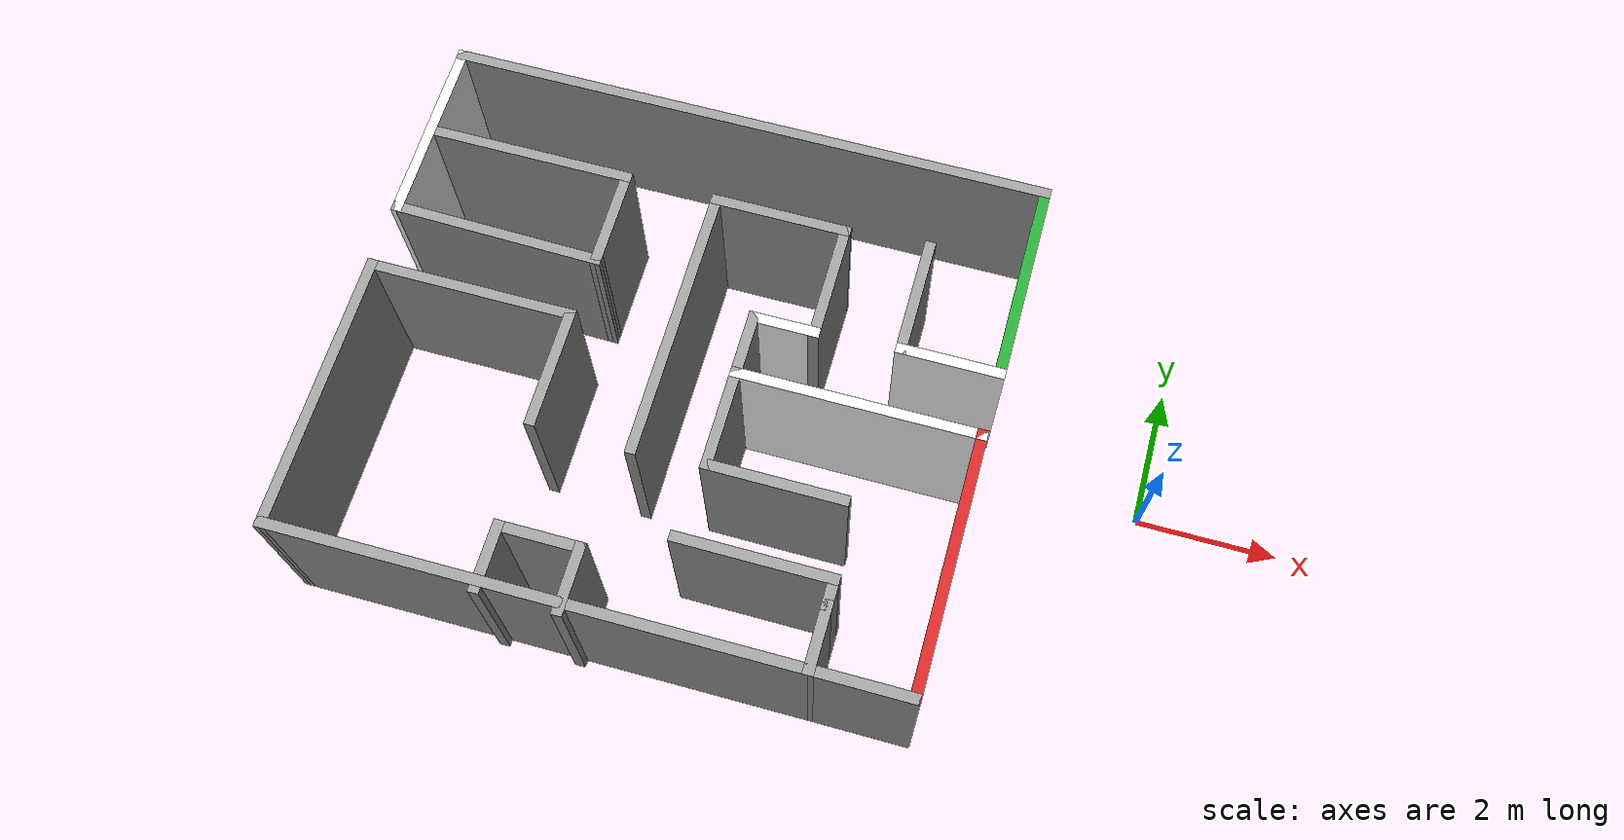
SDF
<?xml version='1.0'?>
<sdf version='1.6'>
  <model name='maze_prova'>
    <pose frame=''>-6.71327 -0.287831 0 0 -0 0</pose>
    <link name='Wall_0'>
      <collision name='Wall_0_Collision'>
        <geometry>
          <box>
            <size>3.75 0.15 2.5</size>
          </box>
        </geometry>
        <pose frame=''>0 0 1.25 0 -0 0</pose>
      </collision>
      <visual name='Wall_0_Visual'>
        <pose frame=''>0 0 1.25 0 -0 0</pose>
        <geometry>
          <box>
            <size>3.75 0.15 2.5</size>
          </box>
        </geometry>
        <material>
          <script>
            <uri>file://media/materials/scripts/gazebo.material</uri>
            <name>Gazebo/Red</name>
          </script>
          <ambient>1 1 1 1</ambient>
        </material>
        <meta>
          <layer>0</layer>
        </meta>
      </visual>
      <pose frame=''>4.28327 -1.83217 0 0 -0 1.5708</pose>
    </link>
    <link name='Wall_1'>
      <collision name='Wall_1_Collision'>
        <geometry>
          <box>
            <size>3.5 0.15 2.5</size>
          </box>
        </geometry>
        <pose frame=''>0 0 1.25 0 -0 0</pose>
      </collision>
      <visual name='Wall_1_Visual'>
        <pose frame=''>0 0 1.25 0 -0 0</pose>
        <geometry>
          <box>
            <size>3.5 0.15 2.5</size>
          </box>
        </geometry>
        <material>
          <script>
            <uri>model://materials/scripts</uri>
            <uri>model://materials/textures</uri>
            <name>wallTexture/arrow_right</name>
          </script>
          <ambient>1 1 1 1</ambient>
        </material>
        <meta>
          <layer>0</layer>
        </meta>
      </visual>
      <pose frame=''>2.60827 -0.032169 0 0 -0 3.14159</pose>
    </link>
    <link name='Wall_10'>
      <collision name='Wall_10_Collision'>
        <geometry>
          <box>
            <size>2.75 0.15 2.5</size>
          </box>
        </geometry>
        <pose frame=''>0 0 1.25 0 -0 0</pose>
      </collision>
      <visual name='Wall_10_Visual'>
        <pose frame=''>0 0 1.25 0 -0 0</pose>
        <geometry>
          <box>
            <size>2.75 0.15 2.5</size>
          </box>
        </geometry>
        <material>
          <script>
            <uri>model://materials/scripts</uri>
            <uri>model://materials/textures</uri>
            <name>wallTexture/arrow_right</name>
          </script>
          <ambient>1 1 1 1</ambient>
        </material>
        <meta>
          <layer>0</layer>
        </meta>
      </visual>
      <pose frame=''>-4.29066 2.43922 0 0 -0 -1.5708</pose>
    </link>
    <link name='Wall_12'>
      <collision name='Wall_12_Collision'>
        <geometry>
          <box>
            <size>4 0.15 2.5</size>
          </box>
        </geometry>
        <pose frame=''>0 0 1.25 0 -0 0</pose>
      </collision>
      <visual name='Wall_12_Visual'>
        <pose frame=''>0 0 1.25 0 -0 0</pose>
        <geometry>
          <box>
            <size>4 0.15 2.5</size>
          </box>
        </geometry>
        <material>
          <script>
            <uri>file://media/materials/scripts/gazebo.material</uri>
            <name>Gazebo/Grey</name>
          </script>
          <ambient>1 1 1 1</ambient>
        </material>
        <meta>
          <layer>0</layer>
        </meta>
      </visual>
      <pose frame=''>-4.30913 -1.72739 0 0 -0 -1.5708</pose>
    </link>
    <link name='Wall_13'>
      <collision name='Wall_13_Collision'>
        <geometry>
          <box>
            <size>7.39242 0.15 2.5</size>
          </box>
        </geometry>
        <pose frame=''>0 0 1.25 0 -0 0</pose>
      </collision>
      <visual name='Wall_13_Visual'>
        <pose frame=''>0 0 1.25 0 -0 0</pose>
        <geometry>
          <box>
            <size>7.39242 0.15 2.5</size>
          </box>
        </geometry>
        <material>
          <script>
            <uri>file://media/materials/scripts/gazebo.material</uri>
            <name>Gazebo/Grey</name>
          </script>
          <ambient>1 1 1 1</ambient>
        </material>
        <meta>
          <layer>0</layer>
        </meta>
      </visual>
      <pose frame=''>-0.68793 -3.64228 0 0 -0 0.002792</pose>
    </link>
    <link name='Wall_15'>
      <collision name='Wall_15_Collision'>
        <geometry>
          <box>
            <size>1.5 0.15 2.5</size>
          </box>
        </geometry>
        <pose frame=''>0 0 1.25 0 -0 0</pose>
      </collision>
      <visual name='Wall_15_Visual'>
        <pose frame=''>0 0 1.25 0 -0 0</pose>
        <geometry>
          <box>
            <size>1.5 0.15 2.5</size>
          </box>
        </geometry>
        <material>
          <script>
            <uri>model://materials/scripts</uri>
            <uri>model://materials/textures</uri>
            <name>wallTexture/arrow_left</name>
          </script>
          <ambient>1 1 1 1</ambient>
        </material>
        <meta>
          <layer>0</layer>
        </meta>
      </visual>
      <pose frame=''>3.63434 0.889217 0 0 -0 3.14159</pose>
    </link>
    <link name='Wall_17'>
      <collision name='Wall_17_Collision'>
        <geometry>
          <box>
            <size>1 0.15 2.5</size>
          </box>
        </geometry>
        <pose frame=''>0 0 1.25 0 -0 0</pose>
      </collision>
      <visual name='Wall_17_Visual'>
        <pose frame=''>0 0 1.25 0 -0 0</pose>
        <geometry>
          <box>
            <size>1 0.15 2.5</size>
          </box>
        </geometry>
        <material>
          <script>
            <uri>file://media/materials/scripts/gazebo.material</uri>
            <name>Gazebo/Grey</name>
          </script>
          <ambient>1 1 1 1</ambient>
        </material>
        <meta>
          <layer>0</layer>
        </meta>
      </visual>
      <pose frame=''>0.933267 0.392831 0 0 -0 1.5708</pose>
    </link>
    <link name='Wall_18'>
      <collision name='Wall_18_Collision'>
        <geometry>
          <box>
            <size>1 0.15 2.5</size>
          </box>
        </geometry>
        <pose frame=''>0 0 1.25 0 -0 0</pose>
      </collision>
      <visual name='Wall_18_Visual'>
        <pose frame=''>0 0 1.25 0 -0 0</pose>
        <geometry>
          <box>
            <size>1 0.15 2.5</size>
          </box>
        </geometry>
        <material>
          <script>
            <uri>model://materials/scripts</uri>
            <uri>model://materials/textures</uri>
            <name>wallTexture/arrow_right</name>
          </script>
          <ambient>1 1 1 1</ambient>
        </material>
        <meta>
          <layer>0</layer>
        </meta>
      </visual>
      <pose frame=''>1.35827 0.817831 0 0 -0 0</pose>
    </link>
    <link name='Wall_2'>
      <collision name='Wall_2_Collision'>
        <geometry>
          <box>
            <size>1.5 0.15 2.5</size>
          </box>
        </geometry>
        <pose frame=''>0 0 1.25 0 -0 0</pose>
      </collision>
      <visual name='Wall_2_Visual'>
        <pose frame=''>0 0 1.25 0 -0 0</pose>
        <geometry>
          <box>
            <size>1.5 0.15 2.5</size>
          </box>
        </geometry>
        <material>
          <script>
            <uri>file://media/materials/scripts/gazebo.material</uri>
            <name>Gazebo/Grey</name>
          </script>
          <ambient>1 1 1 1</ambient>
        </material>
        <meta>
          <layer>0</layer>
        </meta>
      </visual>
      <pose frame=''>0.933267 -0.707169 0 0 -0 -1.5708</pose>
    </link>
    <link name='Wall_20'>
      <collision name='Wall_20_Collision'>
        <geometry>
          <box>
            <size>1.75 0.15 2.5</size>
          </box>
        </geometry>
        <pose frame=''>0 0 1.25 0 -0 0</pose>
      </collision>
      <visual name='Wall_20_Visual'>
        <pose frame=''>0 0 1.25 0 -0 0</pose>
        <geometry>
          <box>
            <size>1.75 0.15 2.5</size>
          </box>
        </geometry>
        <material>
          <script>
            <uri>file://media/materials/scripts/gazebo.material</uri>
            <name>Gazebo/Grey</name>
          </script>
          <ambient>1 1 1 1</ambient>
        </material>
        <meta>
          <layer>0</layer>
        </meta>
      </visual>
      <pose frame=''>1.78327 1.61783 0 0 -0 1.5708</pose>
    </link>
    <link name='Wall_22'>
      <collision name='Wall_22_Collision'>
        <geometry>
          <box>
            <size>1.75 0.15 2.5</size>
          </box>
        </geometry>
        <pose frame=''>0 0 1.25 0 -0 0</pose>
      </collision>
      <visual name='Wall_22_Visual'>
        <pose frame=''>0 0 1.25 0 -0 0</pose>
        <geometry>
          <box>
            <size>1.75 0.15 2.5</size>
          </box>
        </geometry>
        <material>
          <script>
            <uri>file://media/materials/scripts/gazebo.material</uri>
            <name>Gazebo/Grey</name>
          </script>
          <ambient>1 1 1 1</ambient>
        </material>
        <meta>
          <layer>0</layer>
        </meta>
      </visual>
      <pose frame=''>2.95934 1.68922 0 0 -0 1.5708</pose>
    </link>
    <link name='Wall_24'>
      <collision name='Wall_24_Collision'>
        <geometry>
          <box>
            <size>2 0.15 2.5</size>
          </box>
        </geometry>
        <pose frame=''>0 0 1.25 0 -0 0</pose>
      </collision>
      <visual name='Wall_24_Visual'>
        <pose frame=''>0 0 1.25 0 -0 0</pose>
        <geometry>
          <box>
            <size>2 0.15 2.5</size>
          </box>
        </geometry>
        <material>
          <script>
            <uri>file://media/materials/scripts/gazebo.material</uri>
            <name>Gazebo/Grey</name>
          </script>
          <ambient>1 1 1 1</ambient>
        </material>
        <meta>
          <layer>0</layer>
        </meta>
      </visual>
      <pose frame=''>0.858267 2.41783 0 0 -0 3.14159</pose>
    </link>
    <link name='Wall_26'>
      <collision name='Wall_26_Collision'>
        <geometry>
          <box>
            <size>4 0.15 2.5</size>
          </box>
        </geometry>
        <pose frame=''>0 0 1.25 0 -0 0</pose>
      </collision>
      <visual name='Wall_26_Visual'>
        <pose frame=''>0 0 1.25 0 -0 0</pose>
        <geometry>
          <box>
            <size>4 0.15 2.5</size>
          </box>
        </geometry>
        <material>
          <script>
            <uri>file://media/materials/scripts/gazebo.material</uri>
            <name>Gazebo/Grey</name>
          </script>
          <ambient>1 1 1 1</ambient>
        </material>
        <meta>
          <layer>0</layer>
        </meta>
      </visual>
      <pose frame=''>-0.066733 0.492831 0 0 -0 -1.5708</pose>
    </link>
    <link name='Wall_28'>
      <collision name='Wall_28_Collision'>
        <geometry>
          <box>
            <size>3 0.15 2.5</size>
          </box>
        </geometry>
        <pose frame=''>0 0 1.25 0 -0 0</pose>
      </collision>
      <visual name='Wall_28_Visual'>
        <pose frame=''>0 0 1.25 0 -0 0</pose>
        <geometry>
          <box>
            <size>3 0.15 2.5</size>
          </box>
        </geometry>
        <material>
          <script>
            <uri>file://media/materials/scripts/gazebo.material</uri>
            <name>Gazebo/Grey</name>
          </script>
          <ambient>1 1 1 1</ambient>
        </material>
        <meta>
          <layer>0</layer>
        </meta>
      </visual>
      <pose frame=''>-2.80811 2.43203 0 0 -0 3.14159</pose>
    </link>
    <link name='Wall_3'>
      <collision name='Wall_3_Collision'>
        <geometry>
          <box>
            <size>2 0.15 2.5</size>
          </box>
        </geometry>
        <pose frame=''>0 0 1.25 0 -0 0</pose>
      </collision>
      <visual name='Wall_3_Visual'>
        <pose frame=''>0 0 1.25 0 -0 0</pose>
        <geometry>
          <box>
            <size>2 0.15 2.5</size>
          </box>
        </geometry>
        <material>
          <script>
            <uri>file://media/materials/scripts/gazebo.material</uri>
            <name>Gazebo/Grey</name>
          </script>
          <ambient>1 1 1 1</ambient>
        </material>
        <meta>
          <layer>0</layer>
        </meta>
      </visual>
      <pose frame=''>1.85827 -1.38217 0 0 -0 0</pose>
    </link>
    <link name='Wall_30'>
      <collision name='Wall_30_Collision'>
        <geometry>
          <box>
            <size>1.5 0.15 2.5</size>
          </box>
        </geometry>
        <pose frame=''>0 0 1.25 0 -0 0</pose>
      </collision>
      <visual name='Wall_30_Visual'>
        <pose frame=''>0 0 1.25 0 -0 0</pose>
        <geometry>
          <box>
            <size>1.5 0.15 2.5</size>
          </box>
        </geometry>
        <material>
          <script>
            <uri>file://media/materials/scripts/gazebo.material</uri>
            <name>Gazebo/Grey</name>
          </script>
          <ambient>1 1 1 1</ambient>
        </material>
        <meta>
          <layer>0</layer>
        </meta>
      </visual>
      <pose frame=''>-1.38311 1.75703 0 0 -0 -1.5708</pose>
    </link>
    <link name='Wall_31'>
      <collision name='Wall_31_Collision'>
        <geometry>
          <box>
            <size>3.05812 0.15 2.5</size>
          </box>
        </geometry>
        <pose frame=''>0 0 1.25 0 -0 0</pose>
      </collision>
      <visual name='Wall_31_Visual'>
        <pose frame=''>0 0 1.25 0 -0 0</pose>
        <geometry>
          <box>
            <size>3.05812 0.15 2.5</size>
          </box>
        </geometry>
        <material>
          <script>
            <uri>file://media/materials/scripts/gazebo.material</uri>
            <name>Gazebo/Grey</name>
          </script>
          <ambient>1 1 1 1</ambient>
        </material>
        <meta>
          <layer>0</layer>
        </meta>
      </visual>
      <pose frame=''>-2.83689 1.11062 0 0 -0 3.12193</pose>
    </link>
    <link name='Wall_33'>
      <collision name='Wall_33_Collision'>
        <geometry>
          <box>
            <size>3 0.15 2.5</size>
          </box>
        </geometry>
        <pose frame=''>0 0 1.25 0 -0 0</pose>
      </collision>
      <visual name='Wall_33_Visual'>
        <pose frame=''>0 0 1.25 0 -0 0</pose>
        <geometry>
          <box>
            <size>3 0.15 2.5</size>
          </box>
        </geometry>
        <material>
          <script>
            <uri>file://media/materials/scripts/gazebo.material</uri>
            <name>Gazebo/Grey</name>
          </script>
          <ambient>1 1 1 1</ambient>
        </material>
        <meta>
          <layer>0</layer>
        </meta>
      </visual>
      <pose frame=''>-2.88413 0.197612 0 0 -0 0</pose>
    </link>
    <link name='Wall_34'>
      <collision name='Wall_34_Collision'>
        <geometry>
          <box>
            <size>1.75 0.15 2.5</size>
          </box>
        </geometry>
        <pose frame=''>0 0 1.25 0 -0 0</pose>
      </collision>
      <visual name='Wall_34_Visual'>
        <pose frame=''>0 0 1.25 0 -0 0</pose>
        <geometry>
          <box>
            <size>1.75 0.15 2.5</size>
          </box>
        </geometry>
        <material>
          <script>
            <uri>file://media/materials/scripts/gazebo.material</uri>
            <name>Gazebo/Grey</name>
          </script>
          <ambient>1 1 1 1</ambient>
        </material>
        <meta>
          <layer>0</layer>
        </meta>
      </visual>
      <pose frame=''>-1.45913 -0.602388 0 0 -0 -1.5708</pose>
    </link>
    <link name='Wall_36'>
      <collision name='Wall_36_Collision'>
        <geometry>
          <box>
            <size>1 0.15 2.5</size>
          </box>
        </geometry>
        <pose frame=''>0 0 1.25 0 -0 0</pose>
      </collision>
      <visual name='Wall_36_Visual'>
        <pose frame=''>0 0 1.25 0 -0 0</pose>
        <geometry>
          <box>
            <size>1 0.15 2.5</size>
          </box>
        </geometry>
        <material>
          <script>
            <uri>file://media/materials/scripts/gazebo.material</uri>
            <name>Gazebo/Grey</name>
          </script>
          <ambient>1 1 1 1</ambient>
        </material>
        <meta>
          <layer>0</layer>
        </meta>
      </visual>
      <pose frame=''>-1.38311 -3.31422 0 0 -0 1.5708</pose>
    </link>
    <link name='Wall_37'>
      <collision name='Wall_37_Collision'>
        <geometry>
          <box>
            <size>1.25 0.15 2.5</size>
          </box>
        </geometry>
        <pose frame=''>0 0 1.25 0 -0 0</pose>
      </collision>
      <visual name='Wall_37_Visual'>
        <pose frame=''>0 0 1.25 0 -0 0</pose>
        <geometry>
          <box>
            <size>1.25 0.15 2.5</size>
          </box>
        </geometry>
        <material>
          <script>
            <uri>file://media/materials/scripts/gazebo.material</uri>
            <name>Gazebo/Grey</name>
          </script>
          <ambient>1 1 1 1</ambient>
        </material>
        <meta>
          <layer>0</layer>
        </meta>
      </visual>
      <pose frame=''>-0.833106 -2.88922 0 0 -0 0</pose>
    </link>
    <link name='Wall_38'>
      <collision name='Wall_38_Collision'>
        <geometry>
          <box>
            <size>1 0.15 2.5</size>
          </box>
        </geometry>
        <pose frame=''>0 0 1.25 0 -0 0</pose>
      </collision>
      <visual name='Wall_38_Visual'>
        <pose frame=''>0 0 1.25 0 -0 0</pose>
        <geometry>
          <box>
            <size>1 0.15 2.5</size>
          </box>
        </geometry>
        <material>
          <script>
            <uri>file://media/materials/scripts/gazebo.material</uri>
            <name>Gazebo/Grey</name>
          </script>
          <ambient>1 1 1 1</ambient>
        </material>
        <meta>
          <layer>0</layer>
        </meta>
      </visual>
      <pose frame=''>-0.283106 -3.31422 0 0 -0 -1.5708</pose>
    </link>
    <link name='Wall_40'>
      <collision name='Wall_40_Collision'>
        <geometry>
          <box>
            <size>0.5 0.15 2.5</size>
          </box>
        </geometry>
        <pose frame=''>0 0 1.25 0 -0 0</pose>
      </collision>
      <visual name='Wall_40_Visual'>
        <pose frame=''>0 0 1.25 0 -0 0</pose>
        <geometry>
          <box>
            <size>0.5 0.15 2.5</size>
          </box>
        </geometry>
        <material>
          <script>
            <uri>file://media/materials/scripts/gazebo.material</uri>
            <name>Gazebo/Grey</name>
          </script>
          <ambient>1 1 1 1</ambient>
        </material>
        <meta>
          <layer>0</layer>
        </meta>
      </visual>
      <pose frame=''>2.93327 -2.60717 0 0 -0 1.5708</pose>
    </link>
    <link name='Wall_41'>
      <collision name='Wall_41_Collision'>
        <geometry>
          <box>
            <size>2.25 0.15 2.5</size>
          </box>
        </geometry>
        <pose frame=''>0 0 1.25 0 -0 0</pose>
      </collision>
      <visual name='Wall_41_Visual'>
        <pose frame=''>0 0 1.25 0 -0 0</pose>
        <geometry>
          <box>
            <size>2.25 0.15 2.5</size>
          </box>
        </geometry>
        <material>
          <script>
            <uri>file://media/materials/scripts/gazebo.material</uri>
            <name>Gazebo/Grey</name>
          </script>
          <ambient>1 1 1 1</ambient>
        </material>
        <meta>
          <layer>0</layer>
        </meta>
      </visual>
      <pose frame=''>1.88327 -2.43217 0 0 -0 3.14159</pose>
    </link>
    <link name='Wall_5'>
      <collision name='Wall_5_Collision'>
        <geometry>
          <box>
            <size>1.5 0.15 2.5</size>
          </box>
        </geometry>
        <pose frame=''>0 0 1.25 0 -0 0</pose>
      </collision>
      <visual name='Wall_5_Visual'>
        <pose frame=''>0 0 1.25 0 -0 0</pose>
        <geometry>
          <box>
            <size>1.5 0.15 2.5</size>
          </box>
        </geometry>
        <material>
          <script>
            <uri>file://media/materials/scripts/gazebo.material</uri>
            <name>Gazebo/Grey</name>
          </script>
          <ambient>1 1 1 1</ambient>
        </material>
        <meta>
          <layer>0</layer>
        </meta>
      </visual>
      <pose frame=''>3.60827 -3.63217 0 0 -0 3.14159</pose>
    </link>
    <link name='Wall_6'>
      <collision name='Wall_6_Collision'>
        <geometry>
          <box>
            <size>1 0.15 2.5</size>
          </box>
        </geometry>
        <pose frame=''>0 0 1.25 0 -0 0</pose>
      </collision>
      <visual name='Wall_6_Visual'>
        <pose frame=''>0 0 1.25 0 -0 0</pose>
        <geometry>
          <box>
            <size>1 0.15 2.5</size>
          </box>
        </geometry>
        <material>
          <script>
            <uri>file://media/materials/scripts/gazebo.material</uri>
            <name>Gazebo/Grey</name>
          </script>
          <ambient>1 1 1 1</ambient>
        </material>
        <meta>
          <layer>0</layer>
        </meta>
      </visual>
      <pose frame=''>2.93327 -3.20717 0 0 -0 1.5708</pose>
    </link>
    <link name='Wall_8'>
      <collision name='Wall_8_Collision'>
        <geometry>
          <box>
            <size>3 0.15 2.5</size>
          </box>
        </geometry>
        <pose frame=''>0 0 1.25 0 -0 0</pose>
      </collision>
      <visual name='Wall_8_Visual'>
        <pose frame=''>0 0 1.25 0 -0 0</pose>
        <geometry>
          <box>
            <size>3 0.15 2.5</size>
          </box>
        </geometry>
        <material>
          <script>
            <uri>file://media/materials/scripts/gazebo.material</uri>
            <name>Gazebo/Green</name>
          </script>
          <ambient>1 1 1 1</ambient>
        </material>
        <meta>
          <layer>0</layer>
        </meta>
      </visual>
      <pose frame=''>4.30934 2.31422 0 0 -0 1.5708</pose>
    </link>
    <link name='Wall_9'>
      <collision name='Wall_9_Collision'>
        <geometry>
          <box>
            <size>8.75 0.15 2.5</size>
          </box>
        </geometry>
        <pose frame=''>0 0 1.25 0 -0 0</pose>
      </collision>
      <visual name='Wall_9_Visual'>
        <pose frame=''>0 0 1.25 0 -0 0</pose>
        <geometry>
          <box>
            <size>8.75 0.15 2.5</size>
          </box>
        </geometry>
        <material>
          <script>
            <uri>file://media/materials/scripts/gazebo.material</uri>
            <name>Gazebo/Grey</name>
          </script>
          <ambient>1 1 1 1</ambient>
        </material>
        <meta>
          <layer>0</layer>
        </meta>
      </visual>
      <pose frame=''>0.009337 3.73922 0 0 -0 3.14159</pose>
    </link>
    <static>1</static>
  </model>
</sdf>
